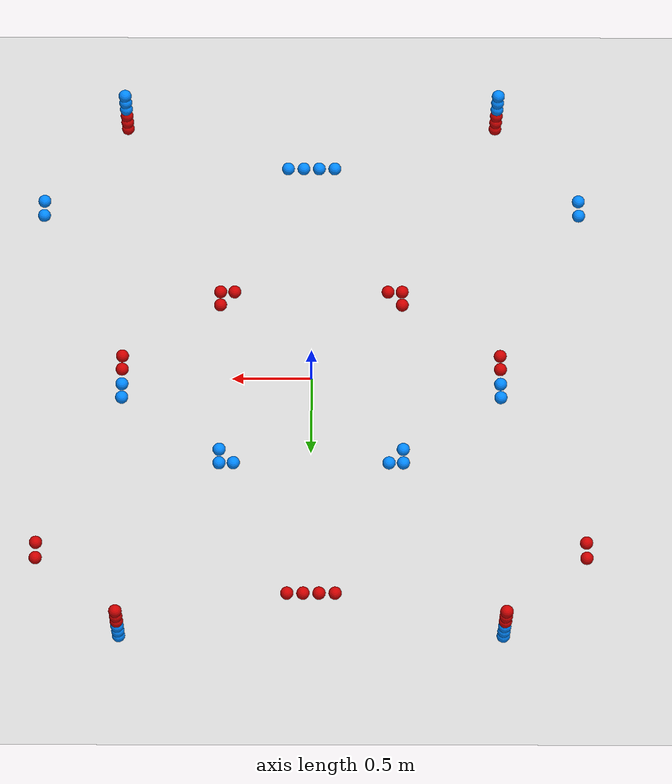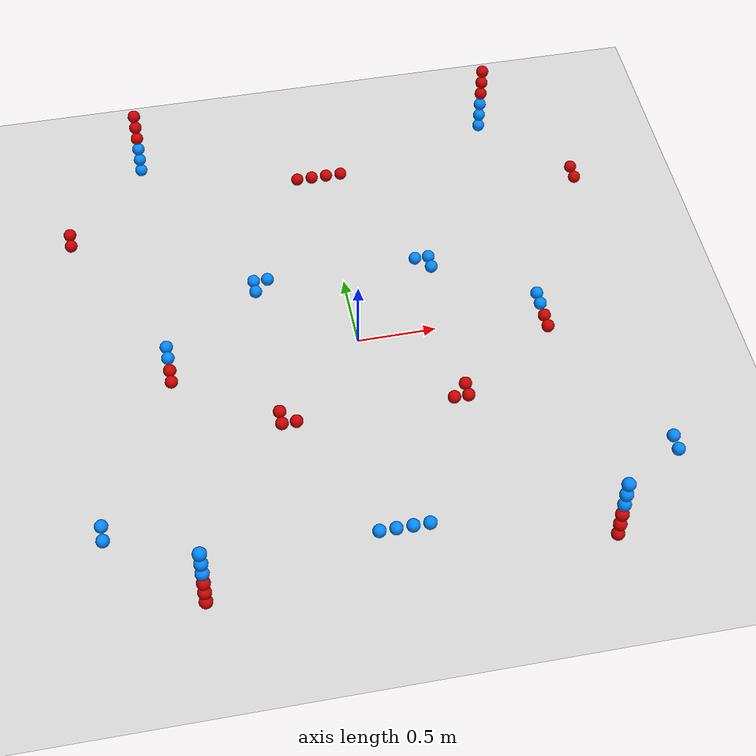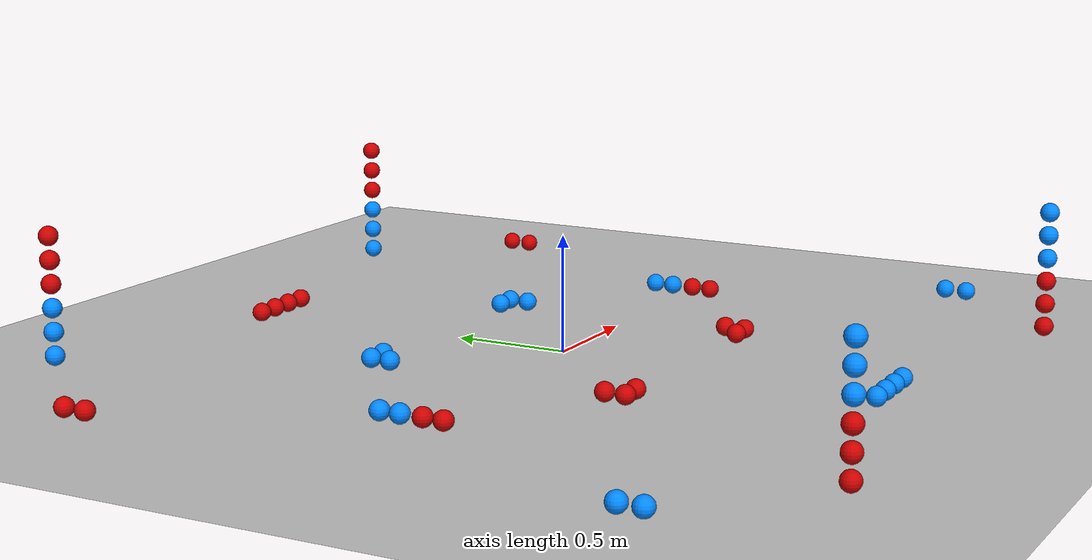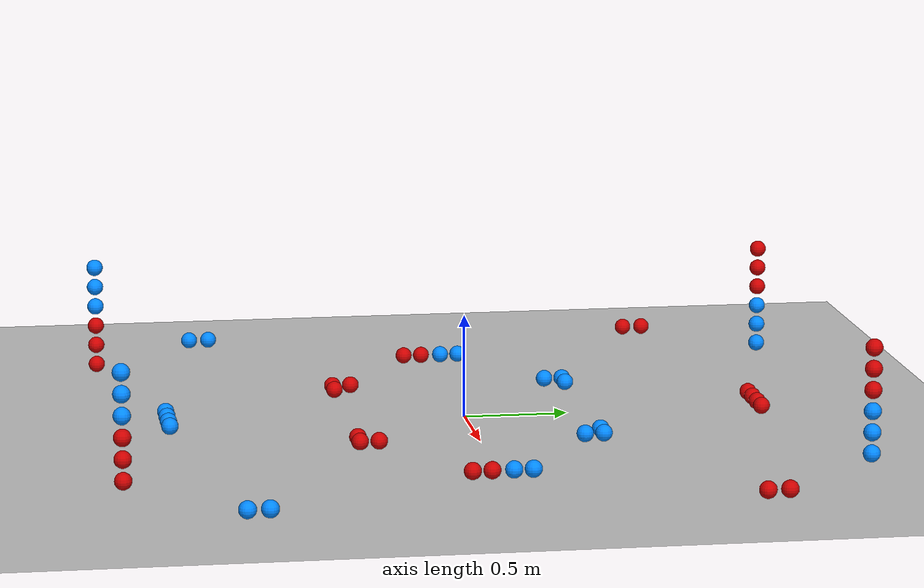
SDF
<sdf version="1.6">
 <world name="pushback_spheres">
  <plugin filename="gz-sim-physics-system" name="gz::sim::systems::Physics"/>
  <plugin filename="gz-sim-user-commands-system" name="gz::sim::systems::UserCommands"/>
  <plugin filename="gz-sim-scene-broadcaster-system" name="gz::sim::systems::SceneBroadcaster"/>
  <plugin filename="gz-sim-sensors-system" name="gz::sim::systems::Sensors">
   <render_engine>ogre2</render_engine>
  </plugin>
  <plugin filename="gz-sim-imu-system" name="gz::sim::systems::Imu"/>
  <include><uri>https://fuel.gazebosim.org/1.0/OpenRobotics/models/Ground Plane</uri></include>
  <include><uri>https://fuel.gazebosim.org/1.0/OpenRobotics/models/Sun</uri></include>
  <scene><shadows>false</shadows></scene>
  <physics type="ode">
   <real_time_update_rate>100.0</real_time_update_rate>
   <max_step_size>0.01</max_step_size>
   <max_contacts>100</max_contacts>
   <ode>
    <solver>
     <type>quick</type>
     <iters>150</iters>
     <precon_iters>0</precon_iters>
     <sor>1.400000</sor>
     <use_dynamic_moi_rescaling>1</use_dynamic_moi_rescaling>
    </solver>
    <constraints>
     <cfm>0.00001</cfm>
     <erp>0.2</erp>
     <contact_max_correcting_vel>2000.000000</contact_max_correcting_vel>
     <contact_surface_layer>0.01000</contact_surface_layer>
    </constraints>
   </ode>
  </physics>
  <include><name>B1</name><uri>model://blue-sphere</uri><pose>1.19 1.72 0.05 0 0 0</pose></include>
  <include><name>B2</name><uri>model://blue-sphere</uri><pose>1.19 1.72 0.15 0 0 0</pose></include>
  <include><name>B3</name><uri>model://blue-sphere</uri><pose>1.19 1.72 0.25 0 0 0</pose></include>
  <include><name>R1</name><uri>model://red-sphere</uri><pose>1.19 1.72 0.35 0 0 0</pose></include>
  <include><name>R2</name><uri>model://red-sphere</uri><pose>1.19 1.72 0.45 0 0 0</pose></include>
  <include><name>R3</name><uri>model://red-sphere</uri><pose>1.19 1.72 0.55 0 0 0</pose></include>
  <include><name>B4</name><uri>model://blue-sphere</uri><pose>-1.19 1.72 0.05 0 0 0</pose></include>
  <include><name>B5</name><uri>model://blue-sphere</uri><pose>-1.19 1.72 0.15 0 0 0</pose></include>
  <include><name>B6</name><uri>model://blue-sphere</uri><pose>-1.19 1.72 0.25 0 0 0</pose></include>
  <include><name>R4</name><uri>model://red-sphere</uri><pose>-1.19 1.72 0.35 0 0 0</pose></include>
  <include><name>R5</name><uri>model://red-sphere</uri><pose>-1.19 1.72 0.45 0 0 0</pose></include>
  <include><name>R6</name><uri>model://red-sphere</uri><pose>-1.19 1.72 0.55 0 0 0</pose></include>
  <include><name>R7</name><uri>model://red-sphere</uri><pose>-1.19 -1.72 0.05 0 0 0</pose></include>
  <include><name>R8</name><uri>model://red-sphere</uri><pose>-1.19 -1.72 0.15 0 0 0</pose></include>
  <include><name>R9</name><uri>model://red-sphere</uri><pose>-1.19 -1.72 0.25 0 0 0</pose></include>
  <include><name>B7</name><uri>model://blue-sphere</uri><pose>-1.19 -1.72 0.35 0 0 0</pose></include>
  <include><name>B8</name><uri>model://blue-sphere</uri><pose>-1.19 -1.72 0.45 0 0 0</pose></include>
  <include><name>B9</name><uri>model://blue-sphere</uri><pose>-1.19 -1.72 0.55 0 0 0</pose></include>
  <include><name>R10</name><uri>model://red-sphere</uri><pose>1.19 -1.72 0.05 0 0 0</pose></include>
  <include><name>R11</name><uri>model://red-sphere</uri><pose>1.19 -1.72 0.15 0 0 0</pose></include>
  <include><name>R12</name><uri>model://red-sphere</uri><pose>1.19 -1.72 0.25 0 0 0</pose></include>
  <include><name>B10</name><uri>model://blue-sphere</uri><pose>1.19 -1.72 0.35 0 0 0</pose></include>
  <include><name>B11</name><uri>model://blue-sphere</uri><pose>1.19 -1.72 0.45 0 0 0</pose></include>
  <include><name>B12</name><uri>model://blue-sphere</uri><pose>1.19 -1.72 0.55 0 0 0</pose></include>
  <include><name>B13</name><uri>model://blue-sphere</uri><pose>1.20 0.05 0.04 0 0 0</pose></include>
  <include><name>B14</name><uri>model://blue-sphere</uri><pose>1.20 0.14 0.04 0 0 0</pose></include>
  <include><name>B15</name><uri>model://blue-sphere</uri><pose>-1.20 0.05 0.04 0 0 0</pose></include>
  <include><name>B16</name><uri>model://blue-sphere</uri><pose>-1.20 0.14 0.04 0 0 0</pose></include>
  <include><name>R13</name><uri>model://red-sphere</uri><pose>1.20 -0.05 0.04 0 0 0</pose></include>
  <include><name>R14</name><uri>model://red-sphere</uri><pose>1.20 -0.14 0.04 0 0 0</pose></include>
  <include><name>R15</name><uri>model://red-sphere</uri><pose>-1.20 -0.05 0.04 0 0 0</pose></include>
  <include><name>R16</name><uri>model://red-sphere</uri><pose>-1.20 -0.14 0.04 0 0 0</pose></include>
  <include><name>R17</name><uri>model://red-sphere</uri><pose>-0.58 -0.58 0.04 0 0 0</pose></include>
  <include><name>R18</name><uri>model://red-sphere</uri><pose>-0.58 -0.49 0.04 0 0 0</pose></include>
  <include><name>R19</name><uri>model://red-sphere</uri><pose>-0.49 -0.58 0.04 0 0 0</pose></include>
  <include><name>R20</name><uri>model://red-sphere</uri><pose>0.58 -0.58 0.04 0 0 0</pose></include>
  <include><name>R21</name><uri>model://red-sphere</uri><pose>0.58 -0.49 0.04 0 0 0</pose></include>
  <include><name>R22</name><uri>model://red-sphere</uri><pose>0.49 -0.58 0.04 0 0 0</pose></include>
  <include><name>B17</name><uri>model://blue-sphere</uri><pose>0.58 0.58 0.04 0 0 0</pose></include>
  <include><name>B18</name><uri>model://blue-sphere</uri><pose>0.58 0.49 0.04 0 0 0</pose></include>
  <include><name>B19</name><uri>model://blue-sphere</uri><pose>0.49 0.58 0.04 0 0 0</pose></include>
  <include><name>B20</name><uri>model://blue-sphere</uri><pose>-0.58 0.58 0.04 0 0 0</pose></include>
  <include><name>B21</name><uri>model://blue-sphere</uri><pose>-0.58 0.49 0.04 0 0 0</pose></include>
  <include><name>B22</name><uri>model://blue-sphere</uri><pose>-0.49 0.58 0.04 0 0 0</pose></include>
  <include><name>R23</name><uri>model://red-sphere</uri><pose>1.72 1.21 0.04 0 0 0</pose></include>
  <include><name>R24</name><uri>model://red-sphere</uri><pose>1.72 1.11 0.04 0 0 0</pose></include>
  <include><name>R25</name><uri>model://red-sphere</uri><pose>-1.72 1.21 0.04 0 0 0</pose></include>
  <include><name>R26</name><uri>model://red-sphere</uri><pose>-1.72 1.11 0.04 0 0 0</pose></include>
  <include><name>B23</name><uri>model://blue-sphere</uri><pose>1.72 -1.21 0.04 0 0 0</pose></include>
  <include><name>B24</name><uri>model://blue-sphere</uri><pose>1.72 -1.11 0.04 0 0 0</pose></include>
  <include><name>B25</name><uri>model://blue-sphere</uri><pose>-1.72 -1.21 0.04 0 0 0</pose></include>
  <include><name>B26</name><uri>model://blue-sphere</uri><pose>-1.72 -1.11 0.04 0 0 0</pose></include>
  <include><name>R27</name><uri>model://red-sphere</uri><pose>-0.15 1.44 0.04 0 0 0</pose></include>
  <include><name>R28</name><uri>model://red-sphere</uri><pose>-0.05 1.44 0.04 0 0 0</pose></include>
  <include><name>R29</name><uri>model://red-sphere</uri><pose>0.05 1.44 0.04 0 0 0</pose></include>
  <include><name>R30</name><uri>model://red-sphere</uri><pose>0.15 1.44 0.04 0 0 0</pose></include>
  <include><name>B27</name><uri>model://blue-sphere</uri><pose>-0.15 -1.44 0.04 0 0 0</pose></include>
  <include><name>B28</name><uri>model://blue-sphere</uri><pose>-0.05 -1.44 0.04 0 0 0</pose></include>
  <include><name>B29</name><uri>model://blue-sphere</uri><pose>0.05 -1.44 0.04 0 0 0</pose></include>
  <include><name>B30</name><uri>model://blue-sphere</uri><pose>0.15 -1.44 0.04 0 0 0</pose></include>
 </world>
</sdf>

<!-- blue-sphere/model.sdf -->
<sdf version="1.6">
  <model name="blue-sphere">

    <!--general object params -->
    <static>false</static>

    <link name="link">

      <!--pose of link relative to model-->
      <pose>0 0 0 0 0 0</pose>

        <velocity_decay>
            <linear>0.5</linear>
        </velocity_decay>

      <visual name="visual">
          <geometry>
              <sphere>
                  <radius>0.041</radius> <!--should be in cm-->
              </sphere>
          </geometry>
          <material>
              <ambient>0, 0.529, 1 1.0</ambient>
              <diffuse>0, 0.529, 1 1.0</diffuse>
              <specular>0.1 0.1 0.1 1.0</specular>
              <emissive>0 0 0 1</emissive>
          </material>
      </visual>

      <collision name="collision">
          <geometry>
              <sphere>
                  <radius>0.041</radius> <!--should be in cm-->
              </sphere>
          </geometry>
          <surface>
            <friction>
                <ode>
                    <mu>0.2</mu>
                    <mu2>0.2</mu2>
                </ode>
                </friction>
            </surface>
      </collision>

      <inertial>
        <mass>0.04</mass> <!--units are in kg. 1g = 0.001kg-->
        <inertia>
          <ixx>0.0002</ixx>
          <iyy>0.0002</iyy>
          <izz>0.0002</izz>
        </inertia>
      </inertial>

    </link>

    <plugin filename="gz-sim-pose-publisher-system" name="gz::sim::systems::PosePublisher">
      <publish_link_pose>false</publish_link_pose>
      <publish_visual_pose>false</publish_visual_pose>
      <publish_collision_pose>false</publish_collision_pose>
      <publish_sensor_pose>false</publish_sensor_pose>
      <publish_model_pose>true</publish_model_pose>
      <publish_nested_model_pose>true</publish_nested_model_pose>
      <use_pose_vector_msg>false</use_pose_vector_msg>
      <update_frequency>20</update_frequency> <!-- Publish at 20 Hz -->
      <static_publisher>false</static_publisher>
      <static_update_frequency>1</static_update_frequency>
    </plugin>

    <plugin filename="rollingFriction" name="rolling_friction::RollingFrictionPlugin">
      <link_name>link</link_name>
      <coefficient>0.01</coefficient>
    </plugin>

  </model>
</sdf>

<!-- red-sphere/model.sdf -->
<sdf version="1.6">
  <model name="red-sphere">

    <!--general object params -->
    <static>false</static>

    <link name="link">

      <!--pose of link relative to model-->
      <pose>0 0 0 0 0 0</pose>

			<velocity_decay>
				<linear>0.5</linear>
			</velocity_decay>

      <visual name="visual">
          <geometry>
              <sphere>
                  <radius>0.041</radius> <!--should be in cm-->
              </sphere>
          </geometry>
          <material>
              <ambient>0.8 0.0 0.0 1.0</ambient>
              <diffuse>0.8 0.0 0.0 1.0</diffuse>
              <specular>0.1 0.1 0.1 1.0</specular>
              <emissive>0 0 0 1</emissive>
          </material>
      </visual>

      <collision name="collision">
			<geometry>
						<sphere>
							<radius>0.041</radius> <!--should be in cm-->
						</sphere>
					</geometry>
					<surface>
						<friction>
							<ode>
								<mu>0.2</mu>
								<mu2>0.2</mu2>
							</ode>
						</friction>
					</surface>
      </collision>

      <inertial>
        <mass>0.04</mass> <!--units are in kg. 1g = 0.001kg-->
        <inertia>
          <ixx>0.0002</ixx>
          <iyy>0.0002</iyy>
          <izz>0.0002</izz>
        </inertia>
      </inertial>

    </link>

    <plugin filename="gz-sim-pose-publisher-system" name="gz::sim::systems::PosePublisher">
      <publish_link_pose>false</publish_link_pose>
      <publish_visual_pose>false</publish_visual_pose>
      <publish_collision_pose>false</publish_collision_pose>
      <publish_sensor_pose>false</publish_sensor_pose>
      <publish_model_pose>true</publish_model_pose>
      <publish_nested_model_pose>true</publish_nested_model_pose>
      <use_pose_vector_msg>false</use_pose_vector_msg>
      <update_frequency>20</update_frequency> <!-- Publish at 20 Hz -->
      <static_publisher>false</static_publisher>
      <static_update_frequency>1</static_update_frequency>
    </plugin>

    <plugin filename="rollingFriction" name="rolling_friction::RollingFrictionPlugin">
      <link_name>link</link_name>
      <coefficient>0.01</coefficient>
    </plugin>

  </model>
</sdf>
